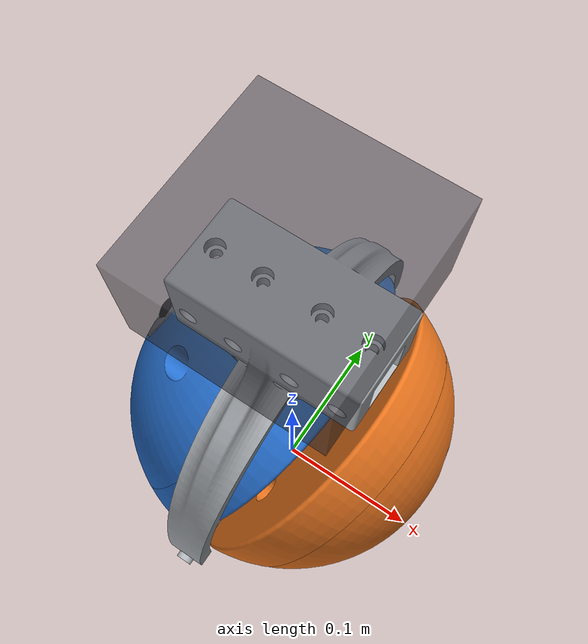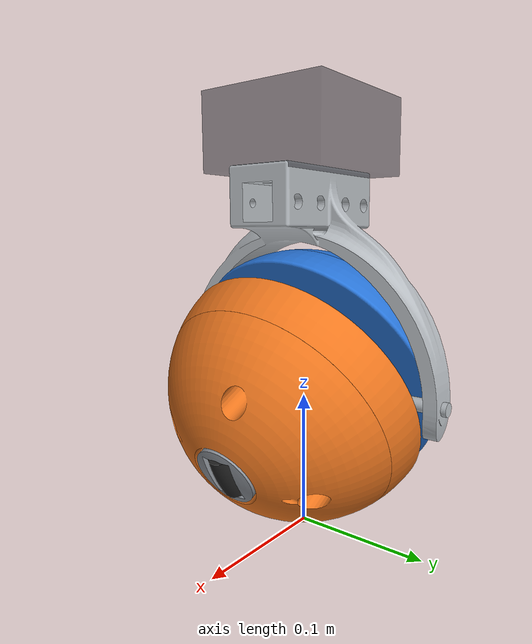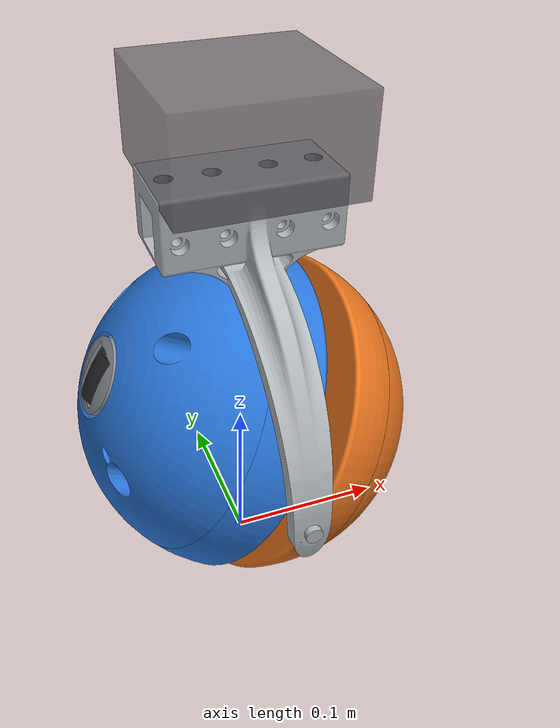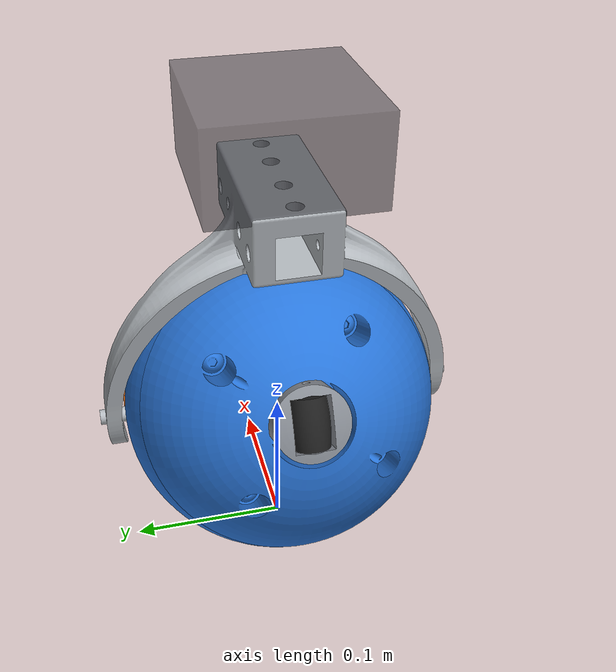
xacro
<?xml version="1.0"?>
<robot name="caster_test_rig" xmlns:xacro="http://www.ros.org/wiki/xacro">
  <xacro:arg name="load_mass" default="2.0"/>
  <xacro:arg name="caster_mass_scale" default="1.0"/>
  <xacro:arg name="carrier_phase" default="0.0"/>
  <xacro:include filename="ball_caster.xacro"/>
  <xacro:macro name="fixture_inertia" params="mass x y z">
    <inertial><mass value="${mass}"/><inertia
      ixx="${mass*(y*y+z*z)/12}" ixy="0" ixz="0"
      iyy="${mass*(x*x+z*z)/12}" iyz="0" izz="${mass*(x*x+y*y)/12}"/></inertial>
  </xacro:macro>
  <link name="world"/>
  <link name="rig_anchor"><xacro:fixture_inertia mass="1.0" x="0.1" y="0.1" z="0.1"/></link>
  <joint name="rig_world_joint" type="fixed"><parent link="world"/><child link="rig_anchor"/></joint>
  <link name="rig_x_link"><xacro:fixture_inertia mass="0.1" x="0.1" y="0.1" z="0.1"/></link>
  <joint name="rig_x_joint" type="prismatic">
    <parent link="rig_anchor"/><child link="rig_x_link"/><axis xyz="1 0 0"/>
    <limit lower="-5" upper="5" effort="1000" velocity="0.5"/>
  </joint>
  <link name="rig_y_link"><xacro:fixture_inertia mass="0.1" x="0.1" y="0.1" z="0.1"/></link>
  <joint name="rig_y_joint" type="prismatic">
    <parent link="rig_x_link"/><child link="rig_y_link"/><axis xyz="0 1 0"/>
    <limit lower="-5" upper="5" effort="1000" velocity="0.5"/>
  </joint>
  <link name="rig_yaw_link"><xacro:fixture_inertia mass="0.1" x="0.1" y="0.1" z="0.1"/></link>
  <joint name="rig_yaw_joint" type="continuous">
    <parent link="rig_y_link"/><child link="rig_yaw_link"/><axis xyz="0 0 1"/>
    <limit effort="1000" velocity="1"/>
  </joint>
  <link name="rig_load_link">
    <inertial><origin xyz="0 0 0.18"/><mass value="$(arg load_mass)"/>
      <inertia ixx="${float('$(arg load_mass)')*(0.10**2+0.055**2)/12}" ixy="0" ixz="0"
        iyy="${float('$(arg load_mass)')*(0.10**2+0.055**2)/12}" iyz="0" izz="${float('$(arg load_mass)')*2*0.10**2/12}"/>
    </inertial>
    <visual><origin xyz="0 0 0.18"/><geometry><box size="0.10 0.10 0.055"/></geometry>
      <material name="load"><color rgba="0.22 0.22 0.25 0.55"/></material></visual>
  </link>
  <!-- The free vertical stage applies weight, not an arbitrary forced penetration. -->
  <joint name="rig_z_joint" type="prismatic">
    <origin xyz="0 0 0.11"/><parent link="rig_yaw_link"/><child link="rig_load_link"/>
    <axis xyz="0 0 1"/><limit lower="-0.08" upper="0.5" effort="1000" velocity="5"/>
    <dynamics damping="0.02" friction="0"/>
  </joint>
  <xacro:ball_caster prefix="caster_" parent="rig_load_link"
    mass_scale="$(arg caster_mass_scale)" carrier_phase="$(arg carrier_phase)"/>
  <gazebo><plugin filename="gz-sim-joint-state-publisher-system" name="gz::sim::systems::JointStatePublisher">
    <topic>/ball_caster/joint_states</topic>
  </plugin></gazebo>
  <xacro:macro name="fixture_motor" params="joint topic">
    <gazebo><plugin filename="gz-sim-joint-controller-system" name="gz::sim::systems::JointController">
      <joint_name>${joint}</joint_name><topic>${topic}</topic>
    </plugin></gazebo>
  </xacro:macro>
  <!-- Only the external laboratory carriage is actuated. All five caster joints are passive. -->
  <xacro:fixture_motor joint="rig_x_joint" topic="/ball_caster/rig/x/cmd_vel"/>
  <xacro:fixture_motor joint="rig_y_joint" topic="/ball_caster/rig/y/cmd_vel"/>
  <xacro:fixture_motor joint="rig_yaw_joint" topic="/ball_caster/rig/yaw/cmd_vel"/>
</robot>

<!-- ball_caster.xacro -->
<robot xmlns:xacro="http://www.ros.org/wiki/xacro" name="cad_split_ball_caster">
  <!-- GENERATED by tools/generate_model.py; edit config/provenance, not mesh poses. SI units. -->
  <xacro:macro name="ball_caster" params="prefix parent center_xyz:='0 0 0' center_rpy:='0 0 0' mass_scale:=1.0 carrier_phase:=0.0">
    <link name="${prefix}fork_link">
      <inertial>
        <origin xyz="-1.3599197126201e-07 2.860486982505e-05 0.091935870891651" />
        <mass value="${mass_scale * 0.81535135680881}" />
        <inertia ixx="${mass_scale * 0.0047211976629729}" ixy="${mass_scale * -3.5517404097827e-09}" ixz="${mass_scale * 3.842249794902e-09}" iyy="${mass_scale * 0.0028164757209925}" iyz="${mass_scale * 8.2243084640889e-09}" izz="${mass_scale * 0.0025994587581607}" />
      </inertial>
      <visual name="${prefix}ball_caster_shaft_2_1_visual">
        <origin xyz="0 0 0" rpy="2.7315965366358e-16 0.13412114902576 1.7417512486349e-17" />
        <geometry>
          <mesh filename="package://hamr_ball_caster/meshes/cad/ball_caster_shaft_2.stl" />
        </geometry>
        <material name="${prefix}fork_material">
          <color rgba="0.7 0.72 0.74 1" />
        </material>
      </visual>
      <collision name="${prefix}ball_caster_shaft_2_1_collision">
        <origin xyz="0 0 0" rpy="2.7315965366358e-16 0.13412114902576 1.7417512486349e-17" />
        <geometry>
          <mesh filename="package://hamr_ball_caster/meshes/cad/ball_caster_shaft_2.stl" />
        </geometry>
      </collision>
      <visual name="${prefix}caster_fork_1_visual">
        <origin xyz="0 0 0" rpy="3.1415926535898 0 -1.5707963267949" />
        <geometry>
          <mesh filename="package://hamr_ball_caster/meshes/cad/caster_fork.stl" />
        </geometry>
        <material name="${prefix}fork_material">
          <color rgba="0.7 0.72 0.74 1" />
        </material>
      </visual>
      <collision name="${prefix}caster_fork_1_collision">
        <origin xyz="0 0 0" rpy="3.1415926535898 0 -1.5707963267949" />
        <geometry>
          <mesh filename="package://hamr_ball_caster/meshes/cad/caster_fork.stl" />
        </geometry>
      </collision>
    </link>
    <gazebo reference="${prefix}fork_link">
      <selfCollide>false</selfCollide>
      <mu1>1.0</mu1>
      <mu2>1.0</mu2>
    </gazebo>
    <link name="${prefix}carrier_link">
      <inertial>
        <origin xyz="-2.133168032576e-08 -1.2227821200412e-07 3.878110010654e-08" />
        <mass value="${mass_scale * 0.38698373450096}" />
        <inertia ixx="${mass_scale * 0.00027350192546672}" ixy="${mass_scale * 9.9900177579252e-10}" ixz="${mass_scale * 0.00040459859435646}" iyy="${mass_scale * 0.0010428237231051}" iyz="${mass_scale * -5.5213106945674e-10}" izz="${mass_scale * 0.00084334325421017}" />
      </inertial>
      <visual name="${prefix}4668k11_permanently_lubricated_stainless_steel_ball_bearing_1_visual">
        <origin xyz="-0.088970459223414 6.8588413165423e-16 0.024766741857071" rpy="0.45307624399293 0.15982567044983 1.2548593889253" />
        <geometry>
          <mesh filename="package://hamr_ball_caster/meshes/cad/4668k11_permanently_lubricated_stainless_steel_ball_bearing.stl" />
        </geometry>
        <material name="${prefix}carrier_material">
          <color rgba="0.55 0.57 0.60 1" />
        </material>
      </visual>
      <visual name="${prefix}bearing_shaft2_1_visual">
        <origin xyz="0 0 0" rpy="1.5707963267949 1.0922075901177 3.1415926535898" />
        <geometry>
          <mesh filename="package://hamr_ball_caster/meshes/cad/bearing_shaft2.stl" />
        </geometry>
        <material name="${prefix}carrier_material">
          <color rgba="0.55 0.57 0.60 1" />
        </material>
      </visual>
      <collision name="${prefix}bearing_shaft2_1_collision">
        <origin xyz="0 0 0" rpy="1.5707963267949 1.0922075901177 3.1415926535898" />
        <geometry>
          <mesh filename="package://hamr_ball_caster/meshes/cad/bearing_shaft2.stl" />
        </geometry>
      </collision>
      <visual name="${prefix}5905k22_needle_roller_bearing_1_visual">
        <origin xyz="-1.3184492090813e-16 0.01905 -1.042718811455e-16" rpy="1.5707963267949 0.60871845433135 -3.1415926535898" />
        <geometry>
          <mesh filename="package://hamr_ball_caster/meshes/cad/5905k22_needle_roller_bearing.stl" />
        </geometry>
        <material name="${prefix}carrier_material">
          <color rgba="0.55 0.57 0.60 1" />
        </material>
      </visual>
      <visual name="${prefix}5905k22_needle_roller_bearing_2_visual">
        <origin xyz="3.1802981880823e-18 -0.01905 -1.2001068601845e-16" rpy="-1.5707963267949 -0.13260381745763 0" />
        <geometry>
          <mesh filename="package://hamr_ball_caster/meshes/cad/5905k22_needle_roller_bearing.stl" />
        </geometry>
        <material name="${prefix}carrier_material">
          <color rgba="0.55 0.57 0.60 1" />
        </material>
      </visual>
      <visual name="${prefix}collet_block_2_visual">
        <origin xyz="0 0 0" rpy="-2.0493850634721 0 -1.5707963267949" />
        <geometry>
          <mesh filename="package://hamr_ball_caster/meshes/cad/collet_block.stl" />
        </geometry>
        <material name="${prefix}carrier_material">
          <color rgba="0.55 0.57 0.60 1" />
        </material>
      </visual>
      <collision name="${prefix}collet_block_2_collision">
        <origin xyz="0 0 0" rpy="-2.0493850634721 0 -1.5707963267949" />
        <geometry>
          <mesh filename="package://hamr_ball_caster/meshes/cad/collet_block.stl" />
        </geometry>
      </collision>
      <visual name="${prefix}collet_block_3_visual">
        <origin xyz="0 0 0" rpy="2.0493850634721 0 1.5707963267949" />
        <geometry>
          <mesh filename="package://hamr_ball_caster/meshes/cad/collet_block.stl" />
        </geometry>
        <material name="${prefix}carrier_material">
          <color rgba="0.55 0.57 0.60 1" />
        </material>
      </visual>
      <collision name="${prefix}collet_block_3_collision">
        <origin xyz="0 0 0" rpy="2.0493850634721 0 1.5707963267949" />
        <geometry>
          <mesh filename="package://hamr_ball_caster/meshes/cad/collet_block.stl" />
        </geometry>
      </collision>
      <visual name="${prefix}roller_mount_1_visual">
        <origin xyz="-0.060359909726958 1.9287932241351e-16 0.031315831423634" rpy="1.5707963267949 -1.0922075901177 -7.5495165674511e-15" />
        <geometry>
          <mesh filename="package://hamr_ball_caster/meshes/cad/roller_mount.stl" />
        </geometry>
        <material name="${prefix}carrier_material">
          <color rgba="0.55 0.57 0.60 1" />
        </material>
      </visual>
      <collision name="${prefix}roller_mount_1_collision">
        <origin xyz="-0.060359909726958 1.9287932241351e-16 0.031315831423634" rpy="1.5707963267949 -1.0922075901177 -7.5495165674511e-15" />
        <geometry>
          <mesh filename="package://hamr_ball_caster/meshes/cad/roller_mount.stl" />
        </geometry>
      </collision>
      <visual name="${prefix}roller_mount_2_visual">
        <origin xyz="0.060359909726958 -1.3811343066965e-16 -0.031315831423634" rpy="-1.5707963267949 1.0922075901177 -3.1415926535898" />
        <geometry>
          <mesh filename="package://hamr_ball_caster/meshes/cad/roller_mount.stl" />
        </geometry>
        <material name="${prefix}carrier_material">
          <color rgba="0.55 0.57 0.60 1" />
        </material>
      </visual>
      <collision name="${prefix}roller_mount_2_collision">
        <origin xyz="0.060359909726958 -1.3811343066965e-16 -0.031315831423634" rpy="-1.5707963267949 1.0922075901177 -3.1415926535898" />
        <geometry>
          <mesh filename="package://hamr_ball_caster/meshes/cad/roller_mount.stl" />
        </geometry>
      </collision>
      <visual name="${prefix}4668k11_permanently_lubricated_stainless_steel_ball_bearing_2_visual">
        <origin xyz="-0.071480383162542 5.4945115298253e-16 0.05847810649787" rpy="0.46314632171208 0.12522539295774 1.3257140492452" />
        <geometry>
          <mesh filename="package://hamr_ball_caster/meshes/cad/4668k11_permanently_lubricated_stainless_steel_ball_bearing.stl" />
        </geometry>
        <material name="${prefix}carrier_material">
          <color rgba="0.55 0.57 0.60 1" />
        </material>
      </visual>
      <visual name="${prefix}4668k11_permanently_lubricated_stainless_steel_ball_bearing_3_visual">
        <origin xyz="0.071480383162542 -2.9012956509494e-16 -0.05847810649787" rpy="2.6646924774639 -0.041808928058327 -1.6515158407662" />
        <geometry>
          <mesh filename="package://hamr_ball_caster/meshes/cad/4668k11_permanently_lubricated_stainless_steel_ball_bearing.stl" />
        </geometry>
        <material name="${prefix}carrier_material">
          <color rgba="0.55 0.57 0.60 1" />
        </material>
      </visual>
      <visual name="${prefix}4668k11_permanently_lubricated_stainless_steel_ball_bearing_4_visual">
        <origin xyz="0.088970459223414 -1.6812812318935e-16 -0.024766741857072" rpy="2.6646924774639 -0.041808928058304 -1.6515158407662" />
        <geometry>
          <mesh filename="package://hamr_ball_caster/meshes/cad/4668k11_permanently_lubricated_stainless_steel_ball_bearing.stl" />
        </geometry>
        <material name="${prefix}carrier_material">
          <color rgba="0.55 0.57 0.60 1" />
        </material>
      </visual>
      <visual name="${prefix}roller_shaft_1_visual">
        <origin xyz="0.080225421192978 -2.8415196902364e-16 -0.041622424177471" rpy="-1.4392304055066 0.46150368964669 0.2888626140617" />
        <geometry>
          <mesh filename="package://hamr_ball_caster/meshes/cad/roller_shaft.stl" />
        </geometry>
        <material name="${prefix}carrier_material">
          <color rgba="0.55 0.57 0.60 1" />
        </material>
      </visual>
      <collision name="${prefix}roller_shaft_1_collision">
        <origin xyz="0.080225421192978 -2.8415196902364e-16 -0.041622424177471" rpy="-1.4392304055066 0.46150368964669 0.2888626140617" />
        <geometry>
          <mesh filename="package://hamr_ball_caster/meshes/cad/roller_shaft.stl" />
        </geometry>
      </collision>
      <visual name="${prefix}roller_shaft_2_visual">
        <origin xyz="-0.080225421192978 7.0151206739909e-16 0.041622424177471" rpy="1.0958134073629 -0.061014222721211 -1.688818554778" />
        <geometry>
          <mesh filename="package://hamr_ball_caster/meshes/cad/roller_shaft.stl" />
        </geometry>
        <material name="${prefix}carrier_material">
          <color rgba="0.55 0.57 0.60 1" />
        </material>
      </visual>
      <collision name="${prefix}roller_shaft_2_collision">
        <origin xyz="-0.080225421192978 7.0151206739909e-16 0.041622424177471" rpy="1.0958134073629 -0.061014222721211 -1.688818554778" />
        <geometry>
          <mesh filename="package://hamr_ball_caster/meshes/cad/roller_shaft.stl" />
        </geometry>
      </collision>
      <visual name="${prefix}spacing_5_visual">
        <origin xyz="-2.8952794135496e-17 -0.025399999999999 -2.5717006399238e-16" rpy="-3.1415926535898 -8.8817841970013e-16 1.5543122344752e-15" />
        <geometry>
          <mesh filename="package://hamr_ball_caster/meshes/cad/spacing.stl" />
        </geometry>
        <material name="${prefix}carrier_material">
          <color rgba="0.55 0.57 0.60 1" />
        </material>
      </visual>
      <visual name="${prefix}spacing_6_visual">
        <origin xyz="2.2696948974483e-16 -0.025399999999999 -1.4803878107189e-16" rpy="-8.8817841970013e-16 8.8817841970013e-16 -3.1415926535898" />
        <geometry>
          <mesh filename="package://hamr_ball_caster/meshes/cad/spacing.stl" />
        </geometry>
        <material name="${prefix}carrier_material">
          <color rgba="0.55 0.57 0.60 1" />
        </material>
      </visual>
      <visual name="${prefix}spacing_7_visual">
        <origin xyz="-1.4428355583671e-15 0.0324 -1.0306020025052e-15" rpy="-6.6613381477509e-16 0.52935104682236 -3.1415926535898" />
        <geometry>
          <mesh filename="package://hamr_ball_caster/meshes/cad/spacing.stl" />
        </geometry>
        <material name="${prefix}carrier_material">
          <color rgba="0.55 0.57 0.60 1" />
        </material>
      </visual>
      <visual name="${prefix}spacing_8_visual">
        <origin xyz="-1.5239597869526e-15 0.0324 -1.127420357788e-15" rpy="-3.1415926535898 -0.52935104682236 1.7763568394003e-15" />
        <geometry>
          <mesh filename="package://hamr_ball_caster/meshes/cad/spacing.stl" />
        </geometry>
        <material name="${prefix}carrier_material">
          <color rgba="0.55 0.57 0.60 1" />
        </material>
      </visual>
    </link>
    <gazebo reference="${prefix}carrier_link">
      <selfCollide>false</selfCollide>
      <mu1>1.0</mu1>
      <mu2>1.0</mu2>
    </gazebo>
    <link name="${prefix}positive_hemisphere_link">
      <inertial>
        <origin xyz="-0.036951230355081 -3.0749538233539e-08 0.019170577654182" />
        <mass value="${mass_scale * 2.0709380529089}" />
        <inertia ixx="${mass_scale * 0.0074861835508766}" ixy="${mass_scale * 3.531611927893e-07}" ixz="${mass_scale * -0.0013246743261826}" iyy="${mass_scale * 0.0049333432093748}" iyz="${mass_scale * 6.7342472776005e-07}" izz="${mass_scale * 0.005620185060156}" />
      </inertial>
      <visual name="${prefix}semi_spherical_wheel_1_visual">
        <origin xyz="1.7694179454963e-16 -5.5481220780721e-19 -1.2316536679435e-16" rpy="0.71065342193327 0.78699994929643 2.1182129953912" />
        <geometry>
          <mesh filename="package://hamr_ball_caster/meshes/cad/semi_spherical_wheel.stl" />
        </geometry>
        <material name="${prefix}positive_shell_material">
          <color rgba="0.16 0.46 0.85 1" />
        </material>
      </visual>
      <collision name="${prefix}semi_spherical_wheel_1_collision">
        <origin xyz="1.7694179454963e-16 -5.5481220780721e-19 -1.2316536679435e-16" rpy="0.71065342193327 0.78699994929643 2.1182129953912" />
        <geometry>
          <mesh filename="package://hamr_ball_caster/meshes/cad/semi_spherical_wheel.stl" />
        </geometry>
      </collision>
      <visual name="${prefix}semi_spherical_wheel_2_1_visual">
        <origin xyz="1.6306400674182e-16 4.4230204607359e-17 -1.0928757898654e-16" rpy="2.5650468234093 0.56460526687105 -1.9056289156507" />
        <geometry>
          <mesh filename="package://hamr_ball_caster/meshes/cad/semi_spherical_wheel_2.stl" />
        </geometry>
        <material name="${prefix}positive_shell_material">
          <color rgba="0.16 0.46 0.85 1" />
        </material>
      </visual>
      <collision name="${prefix}semi_spherical_wheel_2_1_collision">
        <origin xyz="1.6306400674182e-16 4.4230204607359e-17 -1.0928757898654e-16" rpy="2.5650468234093 0.56460526687105 -1.9056289156507" />
        <geometry>
          <mesh filename="package://hamr_ball_caster/meshes/cad/semi_spherical_wheel_2.stl" />
        </geometry>
      </collision>
      <visual name="${prefix}skate_bearing_1_visual">
        <origin xyz="-0.035531193727923 -3.8982107145221e-16 0.018434236865122" rpy="2.2832693225988 -0.78909905016034 1.020813189815" />
        <geometry>
          <mesh filename="package://hamr_ball_caster/meshes/cad/skate_bearing.stl" />
        </geometry>
        <material name="${prefix}positive_shell_material">
          <color rgba="0.16 0.46 0.85 1" />
        </material>
      </visual>
      <visual name="${prefix}5_16_18screw_1_visual">
        <origin xyz="-0.049595127823706 -0.04627728380063 -0.013657623600986" rpy="-0.453165069719 1.0330191027485 2.625793944819" />
        <geometry>
          <mesh filename="package://hamr_ball_caster/meshes/cad/5_16_18screw.stl" />
        </geometry>
        <material name="${prefix}positive_shell_material">
          <color rgba="0.16 0.46 0.85 1" />
        </material>
      </visual>
      <visual name="${prefix}5_16_18screw_2_visual">
        <origin xyz="-0.054805649469903 0.034963023382368 -0.023700678563831" rpy="-1.0905256490406 -0.080395600940615 1.5289833294768" />
        <geometry>
          <mesh filename="package://hamr_ball_caster/meshes/cad/5_16_18screw.stl" />
        </geometry>
        <material name="${prefix}positive_shell_material">
          <color rgba="0.16 0.46 0.85 1" />
        </material>
      </visual>
      <visual name="${prefix}5_16_18screw_3_visual">
        <origin xyz="-0.012181778345075 -0.034963023382369 0.05845498827778" rpy="-0.95501938998602 0.64795302416344 1.9743998503885" />
        <geometry>
          <mesh filename="package://hamr_ball_caster/meshes/cad/5_16_18screw.stl" />
        </geometry>
        <material name="${prefix}positive_shell_material">
          <color rgba="0.16 0.46 0.85 1" />
        </material>
      </visual>
      <visual name="${prefix}5_16_18screw_4_visual">
        <origin xyz="-0.017392299991271 0.046277283800629 0.048411933314935" rpy="1.0522011676212 -0.37877672733572 -1.362812985979" />
        <geometry>
          <mesh filename="package://hamr_ball_caster/meshes/cad/5_16_18screw.stl" />
        </geometry>
        <material name="${prefix}positive_shell_material">
          <color rgba="0.16 0.46 0.85 1" />
        </material>
      </visual>
      <visual name="${prefix}5_16nuts_1_visual">
        <origin xyz="-0.0047245302310451 0.046277283800628 0.04183966135298" rpy="2.1405937187466 0.54778722863856 1.8928473823869" />
        <geometry>
          <mesh filename="package://hamr_ball_caster/meshes/cad/5_16nuts.stl" />
        </geometry>
        <material name="${prefix}positive_shell_material">
          <color rgba="0.16 0.46 0.85 1" />
        </material>
      </visual>
      <visual name="${prefix}5_16nuts_2_visual">
        <origin xyz="-0.042137879709677 0.034963023382369 -0.030272950525786" rpy="2.1365234965122 0.53720132729304 1.8849636778078" />
        <geometry>
          <mesh filename="package://hamr_ball_caster/meshes/cad/5_16nuts.stl" />
        </geometry>
        <material name="${prefix}positive_shell_material">
          <color rgba="0.16 0.46 0.85 1" />
        </material>
      </visual>
      <visual name="${prefix}5_16nuts_3_visual">
        <origin xyz="0.0004859914151514 -0.034963023382369 0.051882716315824" rpy="2.1251703774556 0.50568558696175 1.8621758748594" />
        <geometry>
          <mesh filename="package://hamr_ball_caster/meshes/cad/5_16nuts.stl" />
        </geometry>
        <material name="${prefix}positive_shell_material">
          <color rgba="0.16 0.46 0.85 1" />
        </material>
      </visual>
      <visual name="${prefix}5_16nuts_4_visual">
        <origin xyz="-0.036927358063481 -0.046277283800629 -0.020229895562942" rpy="2.2003707786774 0.67269735420519 1.9968920047621" />
        <geometry>
          <mesh filename="package://hamr_ball_caster/meshes/cad/5_16nuts.stl" />
        </geometry>
        <material name="${prefix}positive_shell_material">
          <color rgba="0.16 0.46 0.85 1" />
        </material>
      </visual>
      <visual name="${prefix}flange_bearing_2_visual">
        <origin xyz="-0.017438333036995 -1.0612432377335e-19 0.0090473279394555" rpy="2.6219074061648 0.38353693871308 -1.7817100453473" />
        <geometry>
          <mesh filename="package://hamr_ball_caster/meshes/cad/flange_bearing.stl" />
        </geometry>
        <material name="${prefix}positive_shell_material">
          <color rgba="0.16 0.46 0.85 1" />
        </material>
      </visual>
      <visual name="${prefix}flange_bearing_3_visual">
        <origin xyz="-0.057253149667482 9.6279340218304e-17 0.029703987159182" rpy="-0.63075874525379 -0.67473128223081 -1.1428024187977" />
        <geometry>
          <mesh filename="package://hamr_ball_caster/meshes/cad/flange_bearing.stl" />
        </geometry>
        <material name="${prefix}positive_shell_material">
          <color rgba="0.16 0.46 0.85 1" />
        </material>
      </visual>
    </link>
    <gazebo reference="${prefix}positive_hemisphere_link">
      <selfCollide>false</selfCollide>
      <mu1>1.0</mu1>
      <mu2>1.0</mu2>
    </gazebo>
    <link name="${prefix}negative_hemisphere_link">
      <inertial>
        <origin xyz="0.036944402537414 -1.0642642877525e-07 -0.019167062591225" />
        <mass value="${mass_scale * 2.0383619968879}" />
        <inertia ixx="${mass_scale * 0.0074812878349042}" ixy="${mass_scale * -2.3862733495564e-07}" ixz="${mass_scale * -0.001328210524038}" iyy="${mass_scale * 0.0049224141573317}" iyz="${mass_scale * -4.5202301339493e-07}" izz="${mass_scale * 0.0056103135631599}" />
      </inertial>
      <visual name="${prefix}semi_spherical_wheel_2_2_visual">
        <origin xyz="-1.1102230246252e-16 1.9336361357266e-18 -2.2551405187698e-17" rpy="-0.5044896268357 -0.30859784072295 -1.4046428316972" />
        <geometry>
          <mesh filename="package://hamr_ball_caster/meshes/cad/semi_spherical_wheel_2.stl" />
        </geometry>
        <material name="${prefix}negative_shell_material">
          <color rgba="0.92 0.46 0.12 1" />
        </material>
      </visual>
      <collision name="${prefix}semi_spherical_wheel_2_2_collision">
        <origin xyz="-1.1102230246252e-16 1.9336361357266e-18 -2.2551405187698e-17" rpy="-0.5044896268357 -0.30859784072295 -1.4046428316972" />
        <geometry>
          <mesh filename="package://hamr_ball_caster/meshes/cad/semi_spherical_wheel_2.stl" />
        </geometry>
      </collision>
      <visual name="${prefix}semi_spherical_wheel_2_visual">
        <origin xyz="-9.0205620750794e-17 8.8725300396349e-18 -1.5612511283792e-17" rpy="-2.1538292924542 -0.98643883988159 0.66905578937253" />
        <geometry>
          <mesh filename="package://hamr_ball_caster/meshes/cad/semi_spherical_wheel.stl" />
        </geometry>
        <material name="${prefix}negative_shell_material">
          <color rgba="0.92 0.46 0.12 1" />
        </material>
      </visual>
      <collision name="${prefix}semi_spherical_wheel_2_collision">
        <origin xyz="-9.0205620750794e-17 8.8725300396349e-18 -1.5612511283792e-17" rpy="-2.1538292924542 -0.98643883988159 0.66905578937253" />
        <geometry>
          <mesh filename="package://hamr_ball_caster/meshes/cad/semi_spherical_wheel.stl" />
        </geometry>
      </collision>
      <visual name="${prefix}skate_bearing_2_visual">
        <origin xyz="0.035503010975954 3.9036127645923e-17 -0.018419615135008" rpy="-0.99892165266747 -0.55305845915749 1.2447737919122" />
        <geometry>
          <mesh filename="package://hamr_ball_caster/meshes/cad/skate_bearing.stl" />
        </geometry>
        <material name="${prefix}negative_shell_material">
          <color rgba="0.92 0.46 0.12 1" />
        </material>
      </visual>
      <visual name="${prefix}5_16_18screw_5_visual">
        <origin xyz="0.04263318490411 -0.054499072572978 0.0002387799347757" rpy="2.433973664829 -0.9197401634728 0.82169875960566" />
        <geometry>
          <mesh filename="package://hamr_ball_caster/meshes/cad/5_16_18screw.stl" />
        </geometry>
        <material name="${prefix}negative_shell_material">
          <color rgba="0.92 0.46 0.12 1" />
        </material>
      </visual>
      <visual name="${prefix}5_16_18screw_6_visual">
        <origin xyz="0.024354242910868 0.054499072572978 -0.034993089648725" rpy="2.5725069013098 -0.99239226180859 0.65236682451013" />
        <geometry>
          <mesh filename="package://hamr_ball_caster/meshes/cad/5_16_18screw.stl" />
        </geometry>
        <material name="${prefix}negative_shell_material">
          <color rgba="0.92 0.46 0.12 1" />
        </material>
      </visual>
      <visual name="${prefix}5_16_18screw_7_visual">
        <origin xyz="0.058592004634544 0.019845681864962 0.030998714271082" rpy="-2.0767204751395 -0.31662261187193 -1.3999784246436" />
        <geometry>
          <mesh filename="package://hamr_ball_caster/meshes/cad/5_16_18screw.stl" />
        </geometry>
        <material name="${prefix}negative_shell_material">
          <color rgba="0.92 0.46 0.12 1" />
        </material>
      </visual>
      <visual name="${prefix}5_16_18screw_8_visual">
        <origin xyz="0.0083954231804333 -0.019845681864962 -0.065753023985032" rpy="2.1599575648649 -0.59386007293376 1.2129201066781" />
        <geometry>
          <mesh filename="package://hamr_ball_caster/meshes/cad/5_16_18screw.stl" />
        </geometry>
        <material name="${prefix}negative_shell_material">
          <color rgba="0.92 0.46 0.12 1" />
        </material>
      </visual>
      <visual name="${prefix}5_16nuts_5_visual">
        <origin xyz="-0.0042723465797926 -0.019845681864962 -0.059180752023076" rpy="-0.50876555452625 -1.0153612961816 0.5808735522352" />
        <geometry>
          <mesh filename="package://hamr_ball_caster/meshes/cad/5_16nuts.stl" />
        </geometry>
        <material name="${prefix}negative_shell_material">
          <color rgba="0.92 0.46 0.12 1" />
        </material>
      </visual>
      <visual name="${prefix}5_16nuts_6_visual">
        <origin xyz="0.011686473150642 0.054499072572978 -0.02842081768677" rpy="1.0104123317138 -0.52275350587402 -1.2671984154294" />
        <geometry>
          <mesh filename="package://hamr_ball_caster/meshes/cad/5_16nuts.stl" />
        </geometry>
        <material name="${prefix}negative_shell_material">
          <color rgba="0.92 0.46 0.12 1" />
        </material>
      </visual>
      <visual name="${prefix}5_16nuts_7_visual">
        <origin xyz="0.029965415143884 -0.054499072572978 0.0068110518967311" rpy="-0.14315434932909 -1.0868381944458 0.16142406561222" />
        <geometry>
          <mesh filename="package://hamr_ball_caster/meshes/cad/5_16nuts.stl" />
        </geometry>
        <material name="${prefix}negative_shell_material">
          <color rgba="0.92 0.46 0.12 1" />
        </material>
      </visual>
      <visual name="${prefix}5_16nuts_8_visual">
        <origin xyz="0.045924234874319 0.019845681864962 0.037570986233038" rpy="0.76825306233286 0.87577945432673 -2.242383813969" />
        <geometry>
          <mesh filename="package://hamr_ball_caster/meshes/cad/5_16nuts.stl" />
        </geometry>
        <material name="${prefix}negative_shell_material">
          <color rgba="0.92 0.46 0.12 1" />
        </material>
      </visual>
    </link>
    <gazebo reference="${prefix}negative_hemisphere_link">
      <selfCollide>false</selfCollide>
      <mu1>1.0</mu1>
      <mu2>1.0</mu2>
    </gazebo>
    <link name="${prefix}positive_polar_roller_link">
      <inertial>
        <origin xyz="0 -1.5370836474374e-20 0" />
        <mass value="${mass_scale * 0.013223655784153}" />
        <inertia ixx="${mass_scale * 1.273356929078e-06}" ixy="${mass_scale * -1.0454631537301e-15}" ixz="${mass_scale * -2.2039970481233e-07}" iyy="${mass_scale * 1.3877043539344e-06}" iyz="${mass_scale * 5.4240561278526e-16}" izz="${mass_scale * 9.6289345777985e-07}" />
      </inertial>
      <visual name="${prefix}roller_2_visual">
        <origin xyz="0 0 0" rpy="-1.4346048172574 0.46024901835937 0.29926335305387" />
        <geometry>
          <mesh filename="package://hamr_ball_caster/meshes/cad/roller.stl" />
        </geometry>
        <material name="${prefix}positive_polar_roller_material">
          <color rgba="0.13 0.13 0.13 1" />
        </material>
      </visual>
      <collision name="${prefix}roller_2_collision">
        <origin xyz="0 0 0" rpy="-1.4346048172574 0.46024901835937 0.29926335305387" />
        <geometry>
          <mesh filename="package://hamr_ball_caster/meshes/cad/roller.stl" />
        </geometry>
      </collision>
    </link>
    <gazebo reference="${prefix}positive_polar_roller_link">
      <selfCollide>false</selfCollide>
      <mu1>1.0</mu1>
      <mu2>1.0</mu2>
    </gazebo>
    <link name="${prefix}negative_polar_roller_link">
      <inertial>
        <origin xyz="0 8.2732296049671e-21 0" />
        <mass value="${mass_scale * 0.013223655784153}" />
        <inertia ixx="${mass_scale * 1.2733569321509e-06}" ixy="${mass_scale * -1.1545655675093e-15}" ixz="${mass_scale * -2.2039970640658e-07}" iyy="${mass_scale * 1.3877043500344e-06}" iyz="${mass_scale * 5.99010233507e-16}" izz="${mass_scale * 9.6289345860698e-07}" />
      </inertial>
      <visual name="${prefix}roller_1_visual">
        <origin xyz="0 0 0" rpy="1.1104924496602 -0.13599289066107 -1.8377024180979" />
        <geometry>
          <mesh filename="package://hamr_ball_caster/meshes/cad/roller.stl" />
        </geometry>
        <material name="${prefix}negative_polar_roller_material">
          <color rgba="0.13 0.13 0.13 1" />
        </material>
      </visual>
      <collision name="${prefix}roller_1_collision">
        <origin xyz="0 0 0" rpy="1.1104924496602 -0.13599289066107 -1.8377024180979" />
        <geometry>
          <mesh filename="package://hamr_ball_caster/meshes/cad/roller.stl" />
        </geometry>
      </collision>
    </link>
    <gazebo reference="${prefix}negative_polar_roller_link">
      <selfCollide>false</selfCollide>
      <mu1>1.0</mu1>
      <mu2>1.0</mu2>
    </gazebo>
    <joint name="${prefix}mount_joint" type="fixed">
      <parent link="${parent}" />
      <child link="${prefix}fork_link" />
      <origin xyz="${center_xyz}" rpy="${center_rpy}" />
    </joint>
    <gazebo reference="${prefix}mount_joint">
      <preserveFixedJoint>true</preserveFixedJoint>
    </gazebo>
    <joint name="${prefix}carrier_joint" type="continuous">
      <parent link="${prefix}fork_link" />
      <child link="${prefix}carrier_link" />
      <origin xyz="0 0 0" rpy="0 ${-carrier_phase} 0" />
      <axis xyz="0 -1 0" />
      <limit effort="100" velocity="1000" />
      <dynamics damping="0.0002" friction="0.0" />
    </joint>
    <joint name="${prefix}positive_hemisphere_joint" type="continuous">
      <parent link="${prefix}carrier_link" />
      <child link="${prefix}positive_hemisphere_link" />
      <origin xyz="0 0 0" />
      <axis xyz="-0.8876457312788 -5.6516578430981e-15 0.4605269327005" />
      <limit effort="100" velocity="1000" />
      <dynamics damping="0.0002" friction="0.0" />
    </joint>
    <joint name="${prefix}positive_polar_roller_joint" type="continuous">
      <parent link="${prefix}carrier_link" />
      <child link="${prefix}positive_polar_roller_link" />
      <origin xyz="-0.080225421192978 6.8040911579084e-16 0.041622424177471" />
      <axis xyz="-0.4605269327005 -4.9764123225193e-17 -0.8876457312788" />
      <limit effort="100" velocity="1000" />
      <dynamics damping="5e-05" friction="0.0" />
    </joint>
    <joint name="${prefix}negative_hemisphere_joint" type="continuous">
      <parent link="${prefix}carrier_link" />
      <child link="${prefix}negative_hemisphere_link" />
      <origin xyz="0 0 0" />
      <axis xyz="0.8876457312788 5.6516578430981e-15 -0.4605269327005" />
      <limit effort="100" velocity="1000" />
      <dynamics damping="0.0002" friction="0.0" />
    </joint>
    <joint name="${prefix}negative_polar_roller_joint" type="continuous">
      <parent link="${prefix}carrier_link" />
      <child link="${prefix}negative_polar_roller_link" />
      <origin xyz="0.080225421192978 -2.8043167259144e-16 -0.041622424177471" />
      <axis xyz="0.4605269327005 -4.4187884109047e-16 0.8876457312788" />
      <limit effort="100" velocity="1000" />
      <dynamics damping="5e-05" friction="0.0" />
    </joint>
  </xacro:macro>
</robot>
